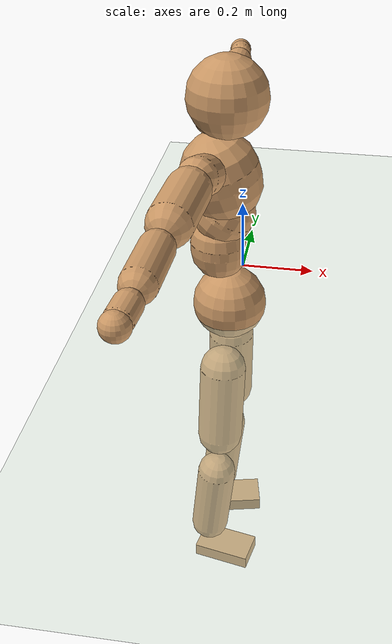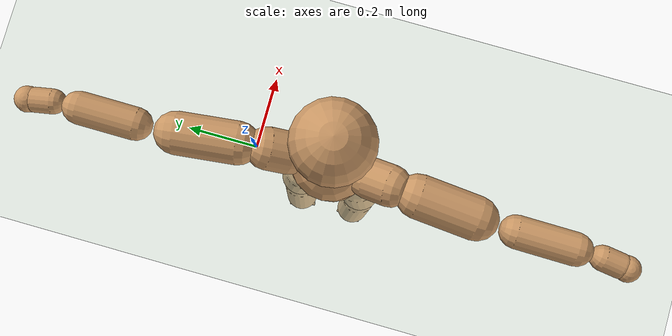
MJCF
<mujoco model="humanoid">
  <compiler coordinate="local"/>
  <default>
    <joint damping="0.0" armature="0.01" stiffness="0.0" limited="true"/>
    <geom conaffinity="1" condim="3" contype="7" margin="0.001" rgba="0.8 0.6 .4 1"/>
  </default>
  <asset>
    <texture type="skybox" builtin="gradient" rgb1=".4 .5 .6" rgb2="0 0 0" width="100" height="100"/>
    <texture builtin="flat" height="1278" mark="cross" markrgb="1 1 1" name="texgeom" random="0.01" rgb1="0.8 0.6 0.4" rgb2="0.8 0.6 0.4" type="cube" width="127"/>
    <texture builtin="checker" height="100" name="texplane" rgb1="0 0 0" rgb2="0.8 0.8 0.8" type="2d" width="100"/>
    <material name="MatPlane" reflectance="0.5" shininess="1" specular="1" texrepeat="60 60" texture="texplane"/>
    <material name="geom" texture="texgeom" texuniform="true"/>
  </asset>
  <worldbody>
    <light cutoff="100" diffuse="1 1 1" dir="-0 0 -1.3" directional="true" exponent="1" pos="0 0 1.3" specular=".1 .1 .1"/>
    <geom conaffinity="1" condim="3" name="floor" pos="0 0 0" rgba="0.8 0.9 0.8 1" size="100 100 .2" type="plane" material="MatPlane"/>
    <body name="Pelvis" pos="-0.0011 -0.2223 0.0296">
      <freejoint name="Pelvis"/>
      <geom type="sphere" contype="1" conaffinity="1" density="500" size="0.0961" pos="0.0000 0.0000 0.0000" name="Pelvis"/>
      <body name="L_Hip" pos="-0.0068 0.0741 -0.0918">
        <joint name="L_Hip_x" type="hinge" pos="0 0 0" axis="1 0 0" stiffness="800" damping="80" armature="0.02" range="-180.0000 180.0000"/>
        <joint name="L_Hip_y" type="hinge" pos="0 0 0" axis="0 1 0" stiffness="800" damping="80" armature="0.02" range="-180.0000 180.0000"/>
        <joint name="L_Hip_z" type="hinge" pos="0 0 0" axis="0 0 1" stiffness="800" damping="80" armature="0.02" range="-180.0000 180.0000"/>
        <geom type="capsule" contype="1" conaffinity="1" density="500" fromto="-0.0020 0.0056 -0.0709 -0.0078 0.0222 -0.2836" size="0.0618" name="L_Hip"/>
        <body name="L_Knee" pos="-0.0098 0.0278 -0.3545">
          <joint name="L_Knee_x" type="hinge" pos="0 0 0" axis="1 0 0" stiffness="800" damping="80" armature="0.02" range="-180.0000 180.0000"/>
          <joint name="L_Knee_y" type="hinge" pos="0 0 0" axis="0 1 0" stiffness="800" damping="80" armature="0.02" range="-180.0000 180.0000"/>
          <joint name="L_Knee_z" type="hinge" pos="0 0 0" axis="0 0 1" stiffness="800" damping="80" armature="0.02" range="-180.0000 180.0000"/>
          <geom type="capsule" contype="1" conaffinity="1" density="500" fromto="-0.0089 -0.0023 -0.0746 -0.0356 -0.0091 -0.2986" size="0.053" name="L_Knee"/>
          <body name="L_Ankle" pos="-0.0445 -0.0113 -0.3732">
            <joint name="L_Ankle_x" type="hinge" pos="0 0 0" axis="1 0 0" stiffness="800" damping="80" armature="0.02" range="-180.0000 180.0000"/>
            <joint name="L_Ankle_y" type="hinge" pos="0 0 0" axis="0 1 0" stiffness="800" damping="80" armature="0.02" range="-180.0000 180.0000"/>
            <joint name="L_Ankle_z" type="hinge" pos="0 0 0" axis="0 0 1" stiffness="800" damping="80" armature="0.02" range="-180.0000 180.0000"/>
            <geom type="box" contype="1" conaffinity="1" density="500" pos="0.0556 0.0122 -0.0267" size="0.0789 0.0458 0.0202" quat="0.9942 0.0000 0.0000 0.1074" name="L_Ankle"/>
            <body name="L_Toe" pos="0.1113 0.0243 -0.0535">
              <joint name="L_Toe_x" type="hinge" pos="0 0 0" axis="1 0 0" stiffness="500" damping="50" armature="0.02" range="-180.0000 180.0000"/>
              <joint name="L_Toe_y" type="hinge" pos="0 0 0" axis="0 1 0" stiffness="500" damping="50" armature="0.02" range="-180.0000 180.0000"/>
              <joint name="L_Toe_z" type="hinge" pos="0 0 0" axis="0 0 1" stiffness="500" damping="50" armature="0.02" range="-180.0000 180.0000"/>
              <geom type="box" contype="1" conaffinity="1" density="500" pos="0.0000 0.0000 0.0262" size="0.001 0.0023 0.001" quat="0.9935 0.0000 0.0000 0.1140" name="L_Toe"/>
            </body>
          </body>
        </body>
      </body>
      <body name="R_Hip" pos="-0.0034 -0.0717 -0.0918">
        <joint name="R_Hip_x" type="hinge" pos="0 0 0" axis="1 0 0" stiffness="800" damping="80" armature="0.02" range="-180.0000 180.0000"/>
        <joint name="R_Hip_y" type="hinge" pos="0 0 0" axis="0 1 0" stiffness="800" damping="80" armature="0.02" range="-180.0000 180.0000"/>
        <joint name="R_Hip_z" type="hinge" pos="0 0 0" axis="0 0 1" stiffness="800" damping="80" armature="0.02" range="-180.0000 180.0000"/>
        <geom type="capsule" contype="1" conaffinity="1" density="500" fromto="-0.0024 -0.0068 -0.0723 -0.0095 -0.0273 -0.2891" size="0.061" name="R_Hip"/>
        <body name="R_Knee" pos="-0.0119 -0.0341 -0.3613">
          <joint name="R_Knee_x" type="hinge" pos="0 0 0" axis="1 0 0" stiffness="800" damping="80" armature="0.02" range="-180.0000 180.0000"/>
          <joint name="R_Knee_y" type="hinge" pos="0 0 0" axis="0 1 0" stiffness="800" damping="80" armature="0.02" range="-180.0000 180.0000"/>
          <joint name="R_Knee_z" type="hinge" pos="0 0 0" axis="0 0 1" stiffness="800" damping="80" armature="0.02" range="-180.0000 180.0000"/>
          <geom type="capsule" contype="1" conaffinity="1" density="500" fromto="-0.0085 0.0028 -0.0749 -0.0340 0.0111 -0.2994" size="0.0532" name="R_Knee"/>
          <body name="R_Ankle" pos="-0.0425 0.0139 -0.3743">
            <joint name="R_Ankle_x" type="hinge" pos="0 0 0" axis="1 0 0" stiffness="800" damping="80" armature="0.02" range="-180.0000 180.0000"/>
            <joint name="R_Ankle_y" type="hinge" pos="0 0 0" axis="0 1 0" stiffness="800" damping="80" armature="0.02" range="-180.0000 180.0000"/>
            <joint name="R_Ankle_z" type="hinge" pos="0 0 0" axis="0 0 1" stiffness="800" damping="80" armature="0.02" range="-180.0000 180.0000"/>
            <geom type="box" contype="1" conaffinity="1" density="500" pos="0.0576 -0.0110 -0.0233" size="0.0806 0.0457 0.0199" quat="0.9955 0.0000 0.0000 -0.0944" name="R_Ankle"/>
            <body name="R_Toe" pos="0.1151 -0.022 -0.0466">
              <joint name="R_Toe_x" type="hinge" pos="0 0 0" axis="1 0 0" stiffness="500" damping="50" armature="0.02" range="-180.0000 180.0000"/>
              <joint name="R_Toe_y" type="hinge" pos="0 0 0" axis="0 1 0" stiffness="500" damping="50" armature="0.02" range="-180.0000 180.0000"/>
              <joint name="R_Toe_z" type="hinge" pos="0 0 0" axis="0 0 1" stiffness="500" damping="50" armature="0.02" range="-180.0000 180.0000"/>
              <geom type="box" contype="1" conaffinity="1" density="500" pos="0.0000 0.0000 0.0248" size="0.0009 0.0023 0.0011" quat="0.9964 0.0000 0.0000 -0.0846" name="R_Toe"/>
            </body>
          </body>
        </body>
      </body>
      <body name="Torso" pos="-0.0239 -0.0022 0.106">
        <joint name="Torso_x" type="hinge" pos="0 0 0" axis="1 0 0" stiffness="1000" damping="100" armature="0.02" range="-180.0000 180.0000"/>
        <joint name="Torso_y" type="hinge" pos="0 0 0" axis="0 1 0" stiffness="1000" damping="100" armature="0.02" range="-180.0000 180.0000"/>
        <joint name="Torso_z" type="hinge" pos="0 0 0" axis="0 0 1" stiffness="1000" damping="100" armature="0.02" range="-180.0000 180.0000"/>
        <geom type="capsule" contype="1" conaffinity="1" density="500" fromto="-0.0008 0.0022 0.0785 -0.0005 0.0015 0.0523" size="0.0738" name="Torso"/>
        <body name="Spine" pos="-0.0013 0.0037 0.1308">
          <joint name="Spine_x" type="hinge" pos="0 0 0" axis="1 0 0" stiffness="1000" damping="100" armature="0.02" range="-180.0000 180.0000"/>
          <joint name="Spine_y" type="hinge" pos="0 0 0" axis="0 1 0" stiffness="1000" damping="100" armature="0.02" range="-180.0000 180.0000"/>
          <joint name="Spine_z" type="hinge" pos="0 0 0" axis="0 0 1" stiffness="1000" damping="100" armature="0.02" range="-180.0000 180.0000"/>
          <geom type="capsule" contype="1" conaffinity="1" density="500" fromto="0.0183 0.0010 0.0304 0.0122 0.0007 0.0203" size="0.0745" name="Spine"/>
          <body name="Chest" pos="0.0305 0.0017 0.0507">
            <joint name="Chest_x" type="hinge" pos="0 0 0" axis="1 0 0" stiffness="1000" damping="100" armature="0.02" range="-180.0000 180.0000"/>
            <joint name="Chest_y" type="hinge" pos="0 0 0" axis="0 1 0" stiffness="1000" damping="100" armature="0.02" range="-180.0000 180.0000"/>
            <joint name="Chest_z" type="hinge" pos="0 0 0" axis="0 0 1" stiffness="1000" damping="100" armature="0.02" range="-180.0000 180.0000"/>
            <geom type="capsule" contype="1" conaffinity="1" density="500" fromto="-0.0274 -0.0008 0.0908 -0.0183 -0.0005 0.0606" size="0.0975" name="Chest"/>
            <body name="Neck" pos="-0.0561 -0.0023 0.2142">
              <joint name="Neck_x" type="hinge" pos="0 0 0" axis="1 0 0" stiffness="500" damping="50" armature="0.02" range="-180.0000 180.0000"/>
              <joint name="Neck_y" type="hinge" pos="0 0 0" axis="0 1 0" stiffness="500" damping="50" armature="0.02" range="-180.0000 180.0000"/>
              <joint name="Neck_z" type="hinge" pos="0 0 0" axis="0 0 1" stiffness="500" damping="50" armature="0.02" range="-180.0000 180.0000"/>
              <geom type="capsule" contype="1" conaffinity="1" density="500" fromto="0.0098 0.0006 0.0127 0.0394 0.0024 0.0509" size="0.0415" name="Neck"/>
              <body name="Head" pos="0.0492 0.003 0.0636">
                <joint name="Head_x" type="hinge" pos="0 0 0" axis="1 0 0" stiffness="500" damping="50" armature="0.02" range="-180.0000 180.0000"/>
                <joint name="Head_y" type="hinge" pos="0 0 0" axis="0 1 0" stiffness="500" damping="50" armature="0.02" range="-180.0000 180.0000"/>
                <joint name="Head_z" type="hinge" pos="0 0 0" axis="0 0 1" stiffness="500" damping="50" armature="0.02" range="-180.0000 180.0000"/>
                <geom type="sphere" contype="1" conaffinity="1" density="500" size="0.0985" pos="0.0000 0.0000 0.0000" name="Head"/>
              </body>
            </body>
            <body name="L_Thorax" pos="-0.0381 0.0774 0.1209">
              <joint name="L_Thorax_x" type="hinge" pos="0 0 0" axis="1 0 0" stiffness="500" damping="50" armature="0.02" range="-180.0000 180.0000"/>
              <joint name="L_Thorax_y" type="hinge" pos="0 0 0" axis="0 1 0" stiffness="500" damping="50" armature="0.02" range="-180.0000 180.0000"/>
              <joint name="L_Thorax_z" type="hinge" pos="0 0 0" axis="0 0 1" stiffness="500" damping="50" armature="0.02" range="-180.0000 180.0000"/>
              <geom type="capsule" contype="1" conaffinity="1" density="500" fromto="-0.0018 0.0172 0.0059 -0.0070 0.0689 0.0236" size="0.0504" name="L_Thorax"/>
              <body name="L_Shoulder" pos="-0.0088 0.0861 0.0295">
                <joint name="L_Shoulder_x" type="hinge" pos="0 0 0" axis="1 0 0" stiffness="500" damping="50" armature="0.02" range="-720.0000 720.0000"/>
                <joint name="L_Shoulder_y" type="hinge" pos="0 0 0" axis="0 1 0" stiffness="500" damping="50" armature="0.02" range="-720.0000 720.0000"/>
                <joint name="L_Shoulder_z" type="hinge" pos="0 0 0" axis="0 0 1" stiffness="500" damping="50" armature="0.02" range="-720.0000 720.0000"/>
                <geom type="capsule" contype="1" conaffinity="1" density="500" fromto="-0.0053 0.0485 -0.0016 -0.0211 0.1940 -0.0066" size="0.0509" name="L_Shoulder"/>
                <body name="L_Elbow" pos="-0.0264 0.2424 -0.0082">
                  <joint name="L_Elbow_x" type="hinge" pos="0 0 0" axis="1 0 0" stiffness="500" damping="50" armature="0.02" range="-720.0000 720.0000"/>
                  <joint name="L_Elbow_y" type="hinge" pos="0 0 0" axis="0 1 0" stiffness="500" damping="50" armature="0.02" range="-720.0000 720.0000"/>
                  <joint name="L_Elbow_z" type="hinge" pos="0 0 0" axis="0 0 1" stiffness="500" damping="50" armature="0.02" range="-720.0000 720.0000"/>
                  <geom type="capsule" contype="1" conaffinity="1" density="500" fromto="0.0001 0.0452 0.0016 0.0002 0.1809 0.0062" size="0.039" name="L_Elbow"/>
                  <body name="L_Wrist" pos="0.0003 0.2261 0.0078">
                    <joint name="L_Wrist_x" type="hinge" pos="0 0 0" axis="1 0 0" stiffness="300" damping="30" armature="0.02" range="-180.0000 180.0000"/>
                    <joint name="L_Wrist_y" type="hinge" pos="0 0 0" axis="0 1 0" stiffness="300" damping="30" armature="0.02" range="-180.0000 180.0000"/>
                    <joint name="L_Wrist_z" type="hinge" pos="0 0 0" axis="0 0 1" stiffness="300" damping="30" armature="0.02" range="-180.0000 180.0000"/>
                    <geom type="capsule" contype="1" conaffinity="1" density="500" fromto="-0.0025 0.0154 -0.0018 -0.0100 0.0615 -0.0074" size="0.0294" name="L_Wrist"/>
                    <body name="L_Hand" pos="-0.0126 0.0768 -0.0092">
                      <joint name="L_Hand_x" type="hinge" pos="0 0 0" axis="1 0 0" stiffness="300" damping="30" armature="0.02" range="-180.0000 180.0000"/>
                      <joint name="L_Hand_y" type="hinge" pos="0 0 0" axis="0 1 0" stiffness="300" damping="30" armature="0.02" range="-180.0000 180.0000"/>
                      <joint name="L_Hand_z" type="hinge" pos="0 0 0" axis="0 0 1" stiffness="300" damping="30" armature="0.02" range="-180.0000 180.0000"/>
                      <geom type="sphere" contype="1" conaffinity="1" density="500" size="0.0311" pos="0.0000 0.0000 0.0000" name="L_Hand"/>
                    </body>
                  </body>
                </body>
              </body>
            </body>
            <body name="R_Thorax" pos="-0.043 -0.0791 0.119">
              <joint name="R_Thorax_x" type="hinge" pos="0 0 0" axis="1 0 0" stiffness="500" damping="50" armature="0.02" range="-180.0000 180.0000"/>
              <joint name="R_Thorax_y" type="hinge" pos="0 0 0" axis="0 1 0" stiffness="500" damping="50" armature="0.02" range="-180.0000 180.0000"/>
              <joint name="R_Thorax_z" type="hinge" pos="0 0 0" axis="0 0 1" stiffness="500" damping="50" armature="0.02" range="-180.0000 180.0000"/>
              <geom type="capsule" contype="1" conaffinity="1" density="500" fromto="-0.0021 -0.0178 0.0063 -0.0083 -0.0711 0.0253" size="0.0493" name="R_Thorax"/>
              <body name="R_Shoulder" pos="-0.0104 -0.0889 0.0316">
                <joint name="R_Shoulder_x" type="hinge" pos="0 0 0" axis="1 0 0" stiffness="500" damping="50" armature="0.02" range="-720.0000 720.0000"/>
                <joint name="R_Shoulder_y" type="hinge" pos="0 0 0" axis="0 1 0" stiffness="500" damping="50" armature="0.02" range="-720.0000 720.0000"/>
                <joint name="R_Shoulder_z" type="hinge" pos="0 0 0" axis="0 0 1" stiffness="500" damping="50" armature="0.02" range="-720.0000 720.0000"/>
                <geom type="capsule" contype="1" conaffinity="1" density="500" fromto="-0.0040 -0.0472 -0.0023 -0.0158 -0.1889 -0.0091" size="0.0522" name="R_Shoulder"/>
                <body name="R_Elbow" pos="-0.0198 -0.2361 -0.0114">
                  <joint name="R_Elbow_x" type="hinge" pos="0 0 0" axis="1 0 0" stiffness="500" damping="50" armature="0.02" range="-720.0000 720.0000"/>
                  <joint name="R_Elbow_y" type="hinge" pos="0 0 0" axis="0 1 0" stiffness="500" damping="50" armature="0.02" range="-720.0000 720.0000"/>
                  <joint name="R_Elbow_z" type="hinge" pos="0 0 0" axis="0 0 1" stiffness="500" damping="50" armature="0.02" range="-720.0000 720.0000"/>
                  <geom type="capsule" contype="1" conaffinity="1" density="500" fromto="-0.0006 -0.0466 0.0017 -0.0024 -0.1865 0.0070" size="0.0392" name="R_Elbow"/>
                  <body name="R_Wrist" pos="-0.003 -0.2331 0.0087">
                    <joint name="R_Wrist_x" type="hinge" pos="0 0 0" axis="1 0 0" stiffness="300" damping="30" armature="0.02" range="-180.0000 180.0000"/>
                    <joint name="R_Wrist_y" type="hinge" pos="0 0 0" axis="0 1 0" stiffness="300" damping="30" armature="0.02" range="-180.0000 180.0000"/>
                    <joint name="R_Wrist_z" type="hinge" pos="0 0 0" axis="0 0 1" stiffness="300" damping="30" armature="0.02" range="-180.0000 180.0000"/>
                    <geom type="capsule" contype="1" conaffinity="1" density="500" fromto="-0.0020 -0.0154 -0.0014 -0.0079 -0.0616 -0.0055" size="0.0299" name="R_Wrist"/>
                    <body name="R_Hand" pos="-0.0099 -0.077 -0.0069">
                      <joint name="R_Hand_x" type="hinge" pos="0 0 0" axis="1 0 0" stiffness="300" damping="30" armature="0.02" range="-180.0000 180.0000"/>
                      <joint name="R_Hand_y" type="hinge" pos="0 0 0" axis="0 1 0" stiffness="300" damping="30" armature="0.02" range="-180.0000 180.0000"/>
                      <joint name="R_Hand_z" type="hinge" pos="0 0 0" axis="0 0 1" stiffness="300" damping="30" armature="0.02" range="-180.0000 180.0000"/>
                      <geom type="sphere" contype="1" conaffinity="1" density="500" size="0.0311" pos="0.0000 0.0000 0.0000" name="R_Hand"/>
                    </body>
                  </body>
                </body>
              </body>
            </body>
          </body>
        </body>
      </body>
    </body>
  </worldbody>
  <actuator>
    <motor name="L_Hip_x" joint="L_Hip_x" gear="500"/>
    <motor name="L_Hip_y" joint="L_Hip_y" gear="500"/>
    <motor name="L_Hip_z" joint="L_Hip_z" gear="500"/>
    <motor name="L_Knee_x" joint="L_Knee_x" gear="500"/>
    <motor name="L_Knee_y" joint="L_Knee_y" gear="500"/>
    <motor name="L_Knee_z" joint="L_Knee_z" gear="500"/>
    <motor name="L_Ankle_x" joint="L_Ankle_x" gear="500"/>
    <motor name="L_Ankle_y" joint="L_Ankle_y" gear="500"/>
    <motor name="L_Ankle_z" joint="L_Ankle_z" gear="500"/>
    <motor name="L_Toe_x" joint="L_Toe_x" gear="500"/>
    <motor name="L_Toe_y" joint="L_Toe_y" gear="500"/>
    <motor name="L_Toe_z" joint="L_Toe_z" gear="500"/>
    <motor name="R_Hip_x" joint="R_Hip_x" gear="500"/>
    <motor name="R_Hip_y" joint="R_Hip_y" gear="500"/>
    <motor name="R_Hip_z" joint="R_Hip_z" gear="500"/>
    <motor name="R_Knee_x" joint="R_Knee_x" gear="500"/>
    <motor name="R_Knee_y" joint="R_Knee_y" gear="500"/>
    <motor name="R_Knee_z" joint="R_Knee_z" gear="500"/>
    <motor name="R_Ankle_x" joint="R_Ankle_x" gear="500"/>
    <motor name="R_Ankle_y" joint="R_Ankle_y" gear="500"/>
    <motor name="R_Ankle_z" joint="R_Ankle_z" gear="500"/>
    <motor name="R_Toe_x" joint="R_Toe_x" gear="500"/>
    <motor name="R_Toe_y" joint="R_Toe_y" gear="500"/>
    <motor name="R_Toe_z" joint="R_Toe_z" gear="500"/>
    <motor name="Torso_x" joint="Torso_x" gear="500"/>
    <motor name="Torso_y" joint="Torso_y" gear="500"/>
    <motor name="Torso_z" joint="Torso_z" gear="500"/>
    <motor name="Spine_x" joint="Spine_x" gear="500"/>
    <motor name="Spine_y" joint="Spine_y" gear="500"/>
    <motor name="Spine_z" joint="Spine_z" gear="500"/>
    <motor name="Chest_x" joint="Chest_x" gear="500"/>
    <motor name="Chest_y" joint="Chest_y" gear="500"/>
    <motor name="Chest_z" joint="Chest_z" gear="500"/>
    <motor name="Neck_x" joint="Neck_x" gear="500"/>
    <motor name="Neck_y" joint="Neck_y" gear="500"/>
    <motor name="Neck_z" joint="Neck_z" gear="500"/>
    <motor name="Head_x" joint="Head_x" gear="500"/>
    <motor name="Head_y" joint="Head_y" gear="500"/>
    <motor name="Head_z" joint="Head_z" gear="500"/>
    <motor name="L_Thorax_x" joint="L_Thorax_x" gear="500"/>
    <motor name="L_Thorax_y" joint="L_Thorax_y" gear="500"/>
    <motor name="L_Thorax_z" joint="L_Thorax_z" gear="500"/>
    <motor name="L_Shoulder_x" joint="L_Shoulder_x" gear="500"/>
    <motor name="L_Shoulder_y" joint="L_Shoulder_y" gear="500"/>
    <motor name="L_Shoulder_z" joint="L_Shoulder_z" gear="500"/>
    <motor name="L_Elbow_x" joint="L_Elbow_x" gear="500"/>
    <motor name="L_Elbow_y" joint="L_Elbow_y" gear="500"/>
    <motor name="L_Elbow_z" joint="L_Elbow_z" gear="500"/>
    <motor name="L_Wrist_x" joint="L_Wrist_x" gear="500"/>
    <motor name="L_Wrist_y" joint="L_Wrist_y" gear="500"/>
    <motor name="L_Wrist_z" joint="L_Wrist_z" gear="500"/>
    <motor name="L_Hand_x" joint="L_Hand_x" gear="500"/>
    <motor name="L_Hand_y" joint="L_Hand_y" gear="500"/>
    <motor name="L_Hand_z" joint="L_Hand_z" gear="500"/>
    <motor name="R_Thorax_x" joint="R_Thorax_x" gear="500"/>
    <motor name="R_Thorax_y" joint="R_Thorax_y" gear="500"/>
    <motor name="R_Thorax_z" joint="R_Thorax_z" gear="500"/>
    <motor name="R_Shoulder_x" joint="R_Shoulder_x" gear="500"/>
    <motor name="R_Shoulder_y" joint="R_Shoulder_y" gear="500"/>
    <motor name="R_Shoulder_z" joint="R_Shoulder_z" gear="500"/>
    <motor name="R_Elbow_x" joint="R_Elbow_x" gear="500"/>
    <motor name="R_Elbow_y" joint="R_Elbow_y" gear="500"/>
    <motor name="R_Elbow_z" joint="R_Elbow_z" gear="500"/>
    <motor name="R_Wrist_x" joint="R_Wrist_x" gear="500"/>
    <motor name="R_Wrist_y" joint="R_Wrist_y" gear="500"/>
    <motor name="R_Wrist_z" joint="R_Wrist_z" gear="500"/>
    <motor name="R_Hand_x" joint="R_Hand_x" gear="500"/>
    <motor name="R_Hand_y" joint="R_Hand_y" gear="500"/>
    <motor name="R_Hand_z" joint="R_Hand_z" gear="500"/>
  </actuator>
  <contact>
    <exclude body1="Torso" body2="Chest"/>
    <exclude body1="Head" body2="Chest"/>
    <exclude body1="R_Knee" body2="R_Toe"/>
    <exclude body1="R_Knee" body2="L_Ankle"/>
    <exclude body1="R_Knee" body2="L_Toe"/>
    <exclude body1="L_Knee" body2="L_Toe"/>
    <exclude body1="L_Knee" body2="R_Ankle"/>
    <exclude body1="L_Knee" body2="R_Toe"/>
    <exclude body1="L_Shoulder" body2="Chest"/>
    <exclude body1="R_Shoulder" body2="Chest"/>
  </contact>
  <sensor/>
  <size njmax="700" nconmax="700"/>
</mujoco>
